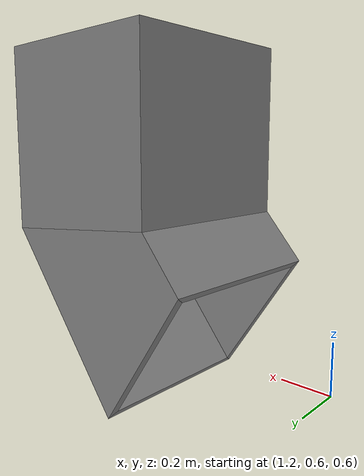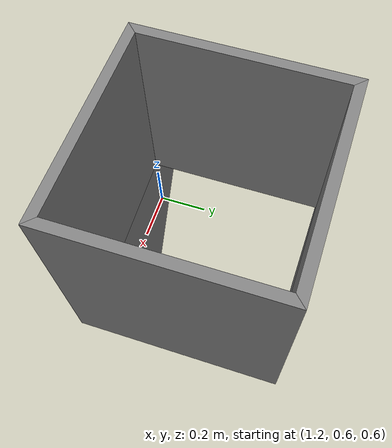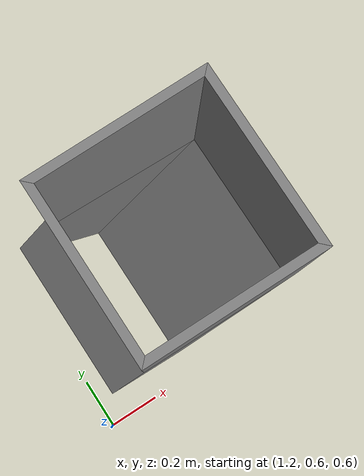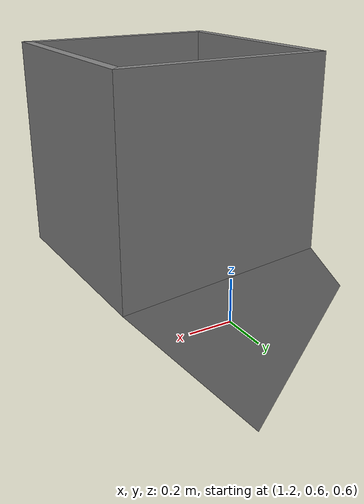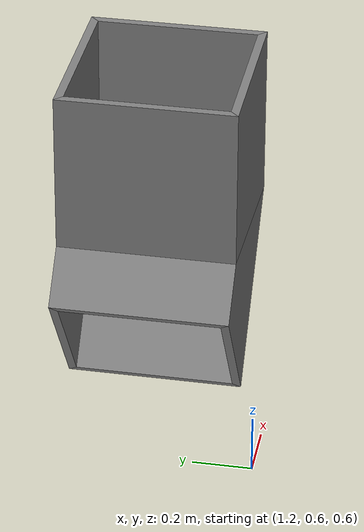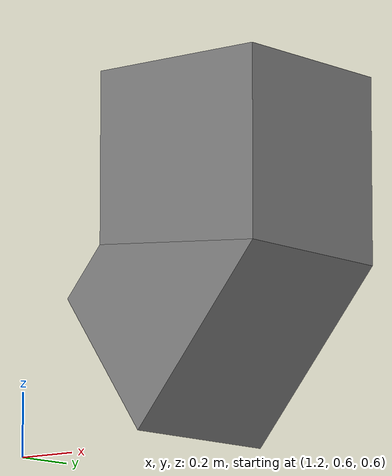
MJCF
<mujoco model="conveyor_passage">
    <asset>
        <mesh name="passage_mesh_uB" file="asset/passage/up_B.obj"/>
        <mesh name="passage_mesh_uF" file="asset/passage/up_F.obj"/>
        <mesh name="passage_mesh_uL" file="asset/passage/up_L.obj"/>
        <mesh name="passage_mesh_uR" file="asset/passage/up_R.obj"/>
        <mesh name="passage_mesh_dB" file="asset/passage/down_B.obj"/>
        <mesh name="passage_mesh_dF" file="asset/passage/down_F.obj"/>
        <mesh name="passage_mesh_dL" file="asset/passage/down_L.obj"/>
        <mesh name="passage_mesh_dR" file="asset/passage/down_R.obj"/>
    </asset>
    <worldbody>
        <body name="passage_obj" pos="1.72 1 1.5">
        <geom type="mesh" mesh="passage_mesh_uB"/>
        <geom type="mesh" mesh="passage_mesh_uF"/>
        <geom type="mesh" mesh="passage_mesh_uL"/>
        <geom type="mesh" mesh="passage_mesh_uR"/>
        <geom type="mesh" mesh="passage_mesh_dB"/>
        <geom type="mesh" mesh="passage_mesh_dF"/>
        <geom type="mesh" mesh="passage_mesh_dL"/>
        <geom type="mesh" mesh="passage_mesh_dR"/>
        </body>
    </worldbody>
</mujoco>
